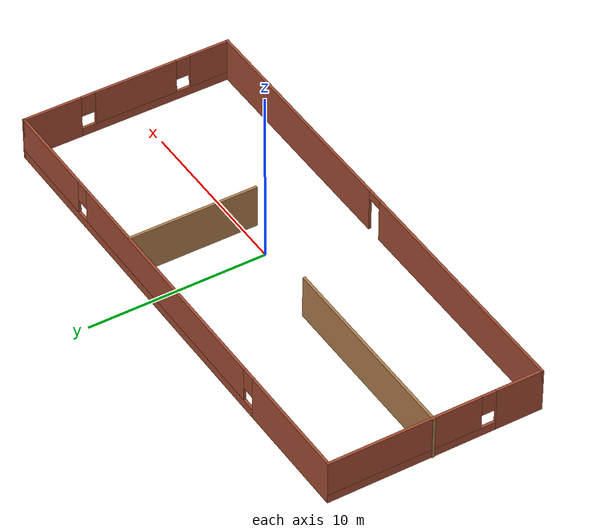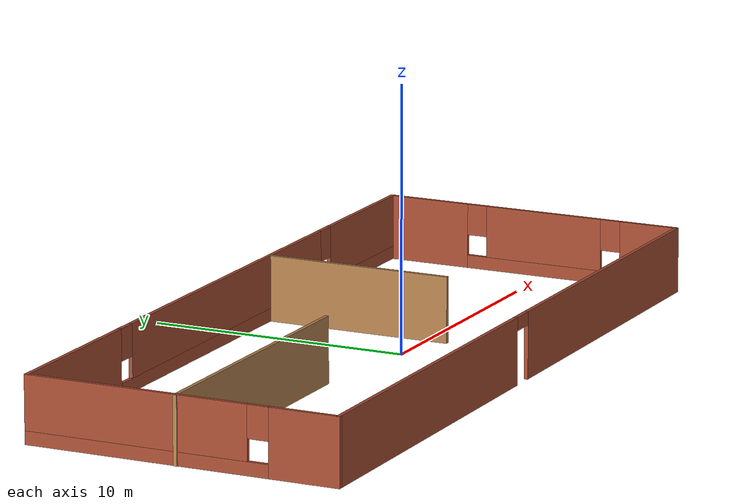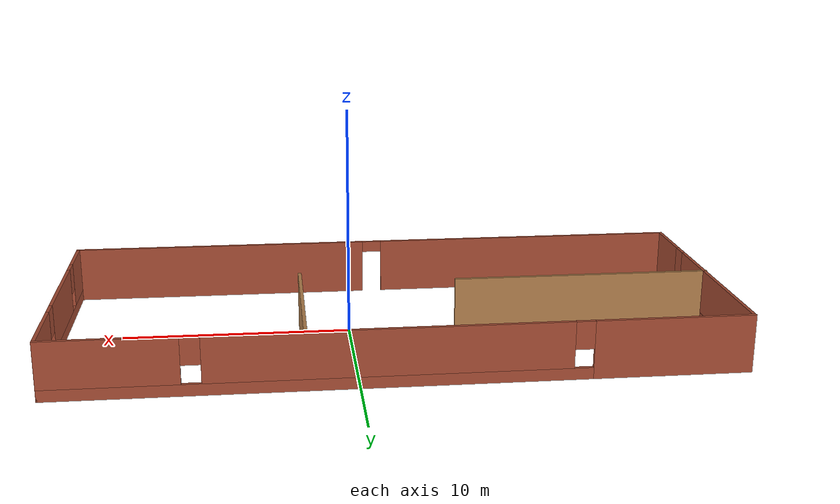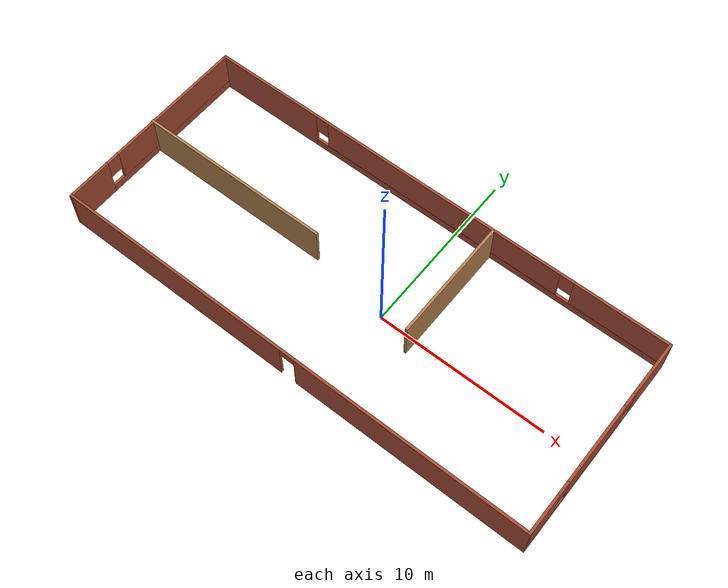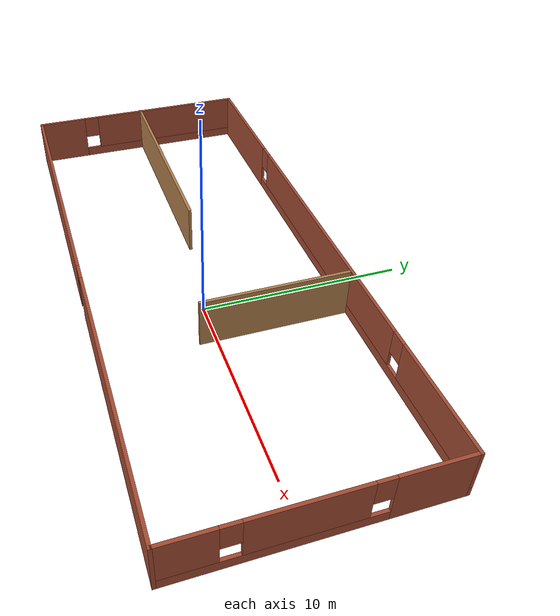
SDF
<?xml version='1.0'?>
<sdf version='1.6'>
  <model name='simple_cafe'>
    <pose frame=''>-1.78245 0.506125 0 0 -0 0</pose>
    <link name='Wall_1'>
      <pose frame=''>0.020227 5.925 0 0 -0 0</pose>
      <visual name='Wall_1_Visual_0'>
        <pose frame=''>-11.0381 0 1.25 0 -0 0</pose>
        <geometry>
          <box>
            <size>6.67382 0.15 2.5</size>
          </box>
        </geometry>
        <material>
          <script>
            <uri>file://media/materials/scripts/gazebo.material</uri>
            <name>Gazebo/Bricks</name>
          </script>
          <ambient>1 1 1 1</ambient>
        </material>
        <meta>
          <layer>0</layer>
        </meta>
      </visual>
      <collision name='Wall_1_Collision_0'>
        <geometry>
          <box>
            <size>6.67382 0.15 2.5</size>
          </box>
        </geometry>
        <pose frame=''>-11.0381 0 1.25 0 -0 0</pose>
      </collision>
      <visual name='Wall_1_Visual_1'>
        <pose frame=''>3.33691 0 0.25 0 -0 0</pose>
        <geometry>
          <box>
            <size>22.0762 0.15 0.5</size>
          </box>
        </geometry>
        <material>
          <script>
            <uri>file://media/materials/scripts/gazebo.material</uri>
            <name>Gazebo/Bricks</name>
          </script>
          <ambient>1 1 1 1</ambient>
        </material>
        <meta>
          <layer>0</layer>
        </meta>
      </visual>
      <collision name='Wall_1_Collision_1'>
        <geometry>
          <box>
            <size>22.0762 0.15 0.5</size>
          </box>
        </geometry>
        <pose frame=''>3.33691 0 0.25 0 -0 0</pose>
      </collision>
      <visual name='Wall_1_Visual_2'>
        <pose frame=''>0.547197 0 1.5 0 -0 0</pose>
        <geometry>
          <box>
            <size>14.8968 0.15 2</size>
          </box>
        </geometry>
        <material>
          <script>
            <uri>file://media/materials/scripts/gazebo.material</uri>
            <name>Gazebo/Bricks</name>
          </script>
          <ambient>1 1 1 1</ambient>
        </material>
        <meta>
          <layer>0</layer>
        </meta>
      </visual>
      <collision name='Wall_1_Collision_2'>
        <geometry>
          <box>
            <size>14.8968 0.15 2</size>
          </box>
        </geometry>
        <pose frame=''>0.547197 0 1.5 0 -0 0</pose>
      </collision>
      <visual name='Wall_1_Visual_3'>
        <pose frame=''>11.5853 0 1.5 0 -0 0</pose>
        <geometry>
          <box>
            <size>5.57942 0.15 2</size>
          </box>
        </geometry>
        <material>
          <script>
            <uri>file://media/materials/scripts/gazebo.material</uri>
            <name>Gazebo/Bricks</name>
          </script>
          <ambient>1 1 1 1</ambient>
        </material>
        <meta>
          <layer>0</layer>
        </meta>
      </visual>
      <collision name='Wall_1_Collision_3'>
        <geometry>
          <box>
            <size>5.57942 0.15 2</size>
          </box>
        </geometry>
        <pose frame=''>11.5853 0 1.5 0 -0 0</pose>
      </collision>
      <visual name='Wall_1_Visual_4'>
        <pose frame=''>-7.30119 0 1.9 0 -0 0</pose>
        <geometry>
          <box>
            <size>0.8 0.15 1.2</size>
          </box>
        </geometry>
        <material>
          <script>
            <uri>file://media/materials/scripts/gazebo.material</uri>
            <name>Gazebo/Bricks</name>
          </script>
          <ambient>1 1 1 1</ambient>
        </material>
        <meta>
          <layer>0</layer>
        </meta>
      </visual>
      <collision name='Wall_1_Collision_4'>
        <geometry>
          <box>
            <size>0.8 0.15 1.2</size>
          </box>
        </geometry>
        <pose frame=''>-7.30119 0 1.9 0 -0 0</pose>
      </collision>
      <visual name='Wall_1_Visual_5'>
        <pose frame=''>8.39558 0 1.9 0 -0 0</pose>
        <geometry>
          <box>
            <size>0.8 0.15 1.2</size>
          </box>
        </geometry>
        <material>
          <script>
            <uri>file://media/materials/scripts/gazebo.material</uri>
            <name>Gazebo/Bricks</name>
          </script>
          <ambient>1 1 1 1</ambient>
        </material>
        <meta>
          <layer>0</layer>
        </meta>
      </visual>
      <collision name='Wall_1_Collision_5'>
        <geometry>
          <box>
            <size>0.8 0.15 1.2</size>
          </box>
        </geometry>
        <pose frame=''>8.39558 0 1.9 0 -0 0</pose>
      </collision>
    </link>
    <link name='Wall_2'>
      <pose frame=''>14.3202 0 0 0 0 -1.5708</pose>
      <visual name='Wall_2_Visual_0'>
        <pose frame=''>-4.342 0 1.25 0 -0 0</pose>
        <geometry>
          <box>
            <size>3.316 0.15 2.5</size>
          </box>
        </geometry>
        <material>
          <script>
            <uri>file://media/materials/scripts/gazebo.material</uri>
            <name>Gazebo/Bricks</name>
          </script>
          <ambient>1 1 1 1</ambient>
        </material>
        <meta>
          <layer>0</layer>
        </meta>
      </visual>
      <collision name='Wall_2_Collision_0'>
        <geometry>
          <box>
            <size>3.316 0.15 2.5</size>
          </box>
        </geometry>
        <pose frame=''>-4.342 0 1.25 0 -0 0</pose>
      </collision>
      <visual name='Wall_2_Visual_1'>
        <pose frame=''>1.658 0 0.25 0 -0 0</pose>
        <geometry>
          <box>
            <size>8.684 0.15 0.5</size>
          </box>
        </geometry>
        <material>
          <script>
            <uri>file://media/materials/scripts/gazebo.material</uri>
            <name>Gazebo/Bricks</name>
          </script>
          <ambient>1 1 1 1</ambient>
        </material>
        <meta>
          <layer>0</layer>
        </meta>
      </visual>
      <collision name='Wall_2_Collision_1'>
        <geometry>
          <box>
            <size>8.684 0.15 0.5</size>
          </box>
        </geometry>
        <pose frame=''>1.658 0 0.25 0 -0 0</pose>
      </collision>
      <visual name='Wall_2_Visual_2'>
        <pose frame=''>0.487209 0 1.5 0 -0 0</pose>
        <geometry>
          <box>
            <size>4.74241 0.15 2</size>
          </box>
        </geometry>
        <material>
          <script>
            <uri>file://media/materials/scripts/gazebo.material</uri>
            <name>Gazebo/Bricks</name>
          </script>
          <ambient>1 1 1 1</ambient>
        </material>
        <meta>
          <layer>0</layer>
        </meta>
      </visual>
      <collision name='Wall_2_Collision_2'>
        <geometry>
          <box>
            <size>4.74241 0.15 2</size>
          </box>
        </geometry>
        <pose frame=''>0.487209 0 1.5 0 -0 0</pose>
      </collision>
      <visual name='Wall_2_Visual_3'>
        <pose frame=''>4.82921 0 1.5 0 -0 0</pose>
        <geometry>
          <box>
            <size>2.34158 0.15 2</size>
          </box>
        </geometry>
        <material>
          <script>
            <uri>file://media/materials/scripts/gazebo.material</uri>
            <name>Gazebo/Bricks</name>
          </script>
          <ambient>1 1 1 1</ambient>
        </material>
        <meta>
          <layer>0</layer>
        </meta>
      </visual>
      <collision name='Wall_2_Collision_3'>
        <geometry>
          <box>
            <size>2.34158 0.15 2</size>
          </box>
        </geometry>
        <pose frame=''>4.82921 0 1.5 0 -0 0</pose>
      </collision>
      <visual name='Wall_2_Visual_4'>
        <pose frame=''>-2.284 0 1.9 0 -0 0</pose>
        <geometry>
          <box>
            <size>0.8 0.15 1.2</size>
          </box>
        </geometry>
        <material>
          <script>
            <uri>file://media/materials/scripts/gazebo.material</uri>
            <name>Gazebo/Bricks</name>
          </script>
          <ambient>1 1 1 1</ambient>
        </material>
        <meta>
          <layer>0</layer>
        </meta>
      </visual>
      <collision name='Wall_2_Collision_4'>
        <geometry>
          <box>
            <size>0.8 0.15 1.2</size>
          </box>
        </geometry>
        <pose frame=''>-2.284 0 1.9 0 -0 0</pose>
      </collision>
      <visual name='Wall_2_Visual_5'>
        <pose frame=''>3.25842 0 1.9 0 -0 0</pose>
        <geometry>
          <box>
            <size>0.8 0.15 1.2</size>
          </box>
        </geometry>
        <material>
          <script>
            <uri>file://media/materials/scripts/gazebo.material</uri>
            <name>Gazebo/Bricks</name>
          </script>
          <ambient>1 1 1 1</ambient>
        </material>
        <meta>
          <layer>0</layer>
        </meta>
      </visual>
      <collision name='Wall_2_Collision_5'>
        <geometry>
          <box>
            <size>0.8 0.15 1.2</size>
          </box>
        </geometry>
        <pose frame=''>3.25842 0 1.9 0 -0 0</pose>
      </collision>
    </link>
    <link name='Wall_3'>
      <pose frame=''>0.020227 -5.925 0 0 -0 3.14159</pose>
      <visual name='Wall_3_Visual_0'>
        <pose frame=''>-7.5445 0 1.25 0 -0 0</pose>
        <geometry>
          <box>
            <size>13.661 0.15 2.5</size>
          </box>
        </geometry>
        <material>
          <script>
            <uri>file://media/materials/scripts/gazebo.material</uri>
            <name>Gazebo/Bricks</name>
          </script>
          <ambient>1 1 1 1</ambient>
        </material>
        <meta>
          <layer>0</layer>
        </meta>
      </visual>
      <collision name='Wall_3_Collision_0'>
        <geometry>
          <box>
            <size>13.661 0.15 2.5</size>
          </box>
        </geometry>
        <pose frame=''>-7.5445 0 1.25 0 -0 0</pose>
      </collision>
      <visual name='Wall_3_Visual_1'>
        <pose frame=''>7.2805 0 1.25 0 -0 0</pose>
        <geometry>
          <box>
            <size>14.189 0.15 2.5</size>
          </box>
        </geometry>
        <material>
          <script>
            <uri>file://media/materials/scripts/gazebo.material</uri>
            <name>Gazebo/Bricks</name>
          </script>
          <ambient>1 1 1 1</ambient>
        </material>
        <meta>
          <layer>0</layer>
        </meta>
      </visual>
      <collision name='Wall_3_Collision_1'>
        <geometry>
          <box>
            <size>14.189 0.15 2.5</size>
          </box>
        </geometry>
        <pose frame=''>7.2805 0 1.25 0 -0 0</pose>
      </collision>
      <visual name='Wall_3_Visual_2'>
        <pose frame=''>-0.264008 0 2.25 0 -0 0</pose>
        <geometry>
          <box>
            <size>0.9 0.15 0.5</size>
          </box>
        </geometry>
        <material>
          <script>
            <uri>file://media/materials/scripts/gazebo.material</uri>
            <name>Gazebo/Bricks</name>
          </script>
          <ambient>1 1 1 1</ambient>
        </material>
        <meta>
          <layer>0</layer>
        </meta>
      </visual>
      <collision name='Wall_3_Collision_2'>
        <geometry>
          <box>
            <size>0.9 0.15 0.5</size>
          </box>
        </geometry>
        <pose frame=''>-0.264008 0 2.25 0 -0 0</pose>
      </collision>
    </link>
    <link name='Wall_4'>
      <pose frame=''>-14.2798 0 0 0 -0 1.5708</pose>
      <visual name='Wall_4_Visual_0'>
        <pose frame=''>-4.66739 0 1.25 0 -0 0</pose>
        <geometry>
          <box>
            <size>2.66523 0.15 2.5</size>
          </box>
        </geometry>
        <material>
          <script>
            <uri>file://media/materials/scripts/gazebo.material</uri>
            <name>Gazebo/Bricks</name>
          </script>
          <ambient>1 1 1 1</ambient>
        </material>
        <meta>
          <layer>0</layer>
        </meta>
      </visual>
      <collision name='Wall_4_Collision_0'>
        <geometry>
          <box>
            <size>2.66523 0.15 2.5</size>
          </box>
        </geometry>
        <pose frame=''>-4.66739 0 1.25 0 -0 0</pose>
      </collision>
      <visual name='Wall_4_Visual_1'>
        <pose frame=''>1.33261 0 0.25 0 -0 0</pose>
        <geometry>
          <box>
            <size>9.33477 0.15 0.5</size>
          </box>
        </geometry>
        <material>
          <script>
            <uri>file://media/materials/scripts/gazebo.material</uri>
            <name>Gazebo/Bricks</name>
          </script>
          <ambient>1 1 1 1</ambient>
        </material>
        <meta>
          <layer>0</layer>
        </meta>
      </visual>
      <collision name='Wall_4_Collision_1'>
        <geometry>
          <box>
            <size>9.33477 0.15 0.5</size>
          </box>
        </geometry>
        <pose frame=''>1.33261 0 0.25 0 -0 0</pose>
      </collision>
      <visual name='Wall_4_Visual_2'>
        <pose frame=''>1.73261 0 1.5 0 -0 0</pose>
        <geometry>
          <box>
            <size>8.53477 0.15 2</size>
          </box>
        </geometry>
        <material>
          <script>
            <uri>file://media/materials/scripts/gazebo.material</uri>
            <name>Gazebo/Bricks</name>
          </script>
          <ambient>1 1 1 1</ambient>
        </material>
        <meta>
          <layer>0</layer>
        </meta>
      </visual>
      <collision name='Wall_4_Collision_2'>
        <geometry>
          <box>
            <size>8.53477 0.15 2</size>
          </box>
        </geometry>
        <pose frame=''>1.73261 0 1.5 0 -0 0</pose>
      </collision>
      <visual name='Wall_4_Visual_3'>
        <pose frame=''>-2.93477 0 1.9 0 -0 0</pose>
        <geometry>
          <box>
            <size>0.8 0.15 1.2</size>
          </box>
        </geometry>
        <material>
          <script>
            <uri>file://media/materials/scripts/gazebo.material</uri>
            <name>Gazebo/Bricks</name>
          </script>
          <ambient>1 1 1 1</ambient>
        </material>
        <meta>
          <layer>0</layer>
        </meta>
      </visual>
      <collision name='Wall_4_Collision_3'>
        <geometry>
          <box>
            <size>0.8 0.15 1.2</size>
          </box>
        </geometry>
        <pose frame=''>-2.93477 0 1.9 0 -0 0</pose>
      </collision>
    </link>
    <link name='Wall_6'>
      <collision name='Wall_6_Collision'>
        <geometry>
          <box>
            <size>11.5 0.15 2.5</size>
          </box>
        </geometry>
        <pose frame=''>0 0 1.25 0 -0 0</pose>
      </collision>
      <visual name='Wall_6_Visual'>
        <pose frame=''>0 0 1.25 0 -0 0</pose>
        <geometry>
          <box>
            <size>11.5 0.15 2.5</size>
          </box>
        </geometry>
        <material>
          <script>
            <uri>file://media/materials/scripts/gazebo.material</uri>
            <name>Gazebo/Wood</name>
          </script>
          <ambient>1 1 1 1</ambient>
        </material>
        <meta>
          <layer>0</layer>
        </meta>
      </visual>
      <pose frame=''>-8.64523 0.180308 0 0 -0 0</pose>
    </link>
    <link name='Wall_8'>
      <collision name='Wall_8_Collision'>
        <geometry>
          <box>
            <size>7.25 0.15 2.5</size>
          </box>
        </geometry>
        <pose frame=''>0 0 1.25 0 -0 0</pose>
      </collision>
      <visual name='Wall_8_Visual'>
        <pose frame=''>0 0 1.25 0 -0 0</pose>
        <geometry>
          <box>
            <size>7.25 0.15 2.5</size>
          </box>
        </geometry>
        <material>
          <script>
            <uri>file://media/materials/scripts/gazebo.material</uri>
            <name>Gazebo/Wood</name>
          </script>
          <ambient>1 1 1 1</ambient>
        </material>
        <meta>
          <layer>0</layer>
        </meta>
      </visual>
      <pose frame=''>3.92524 2.29409 0 0 0 -1.5708</pose>
    </link>
    <static>1</static>
  </model>
</sdf>
